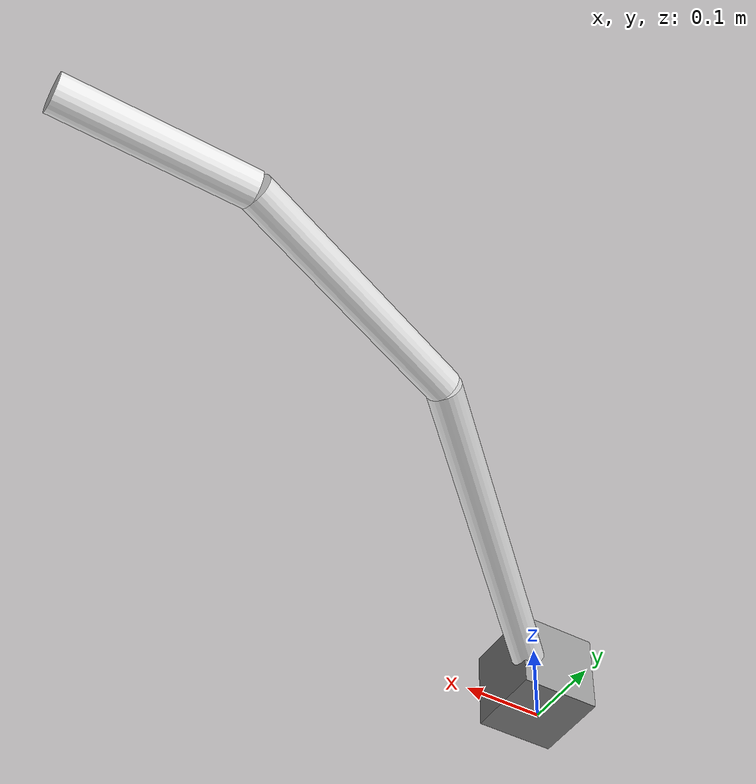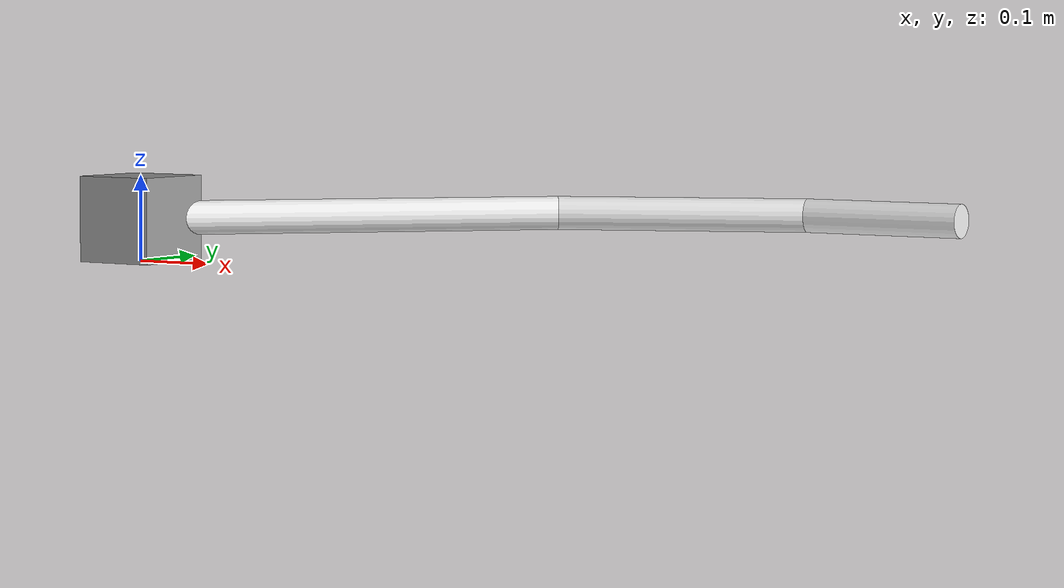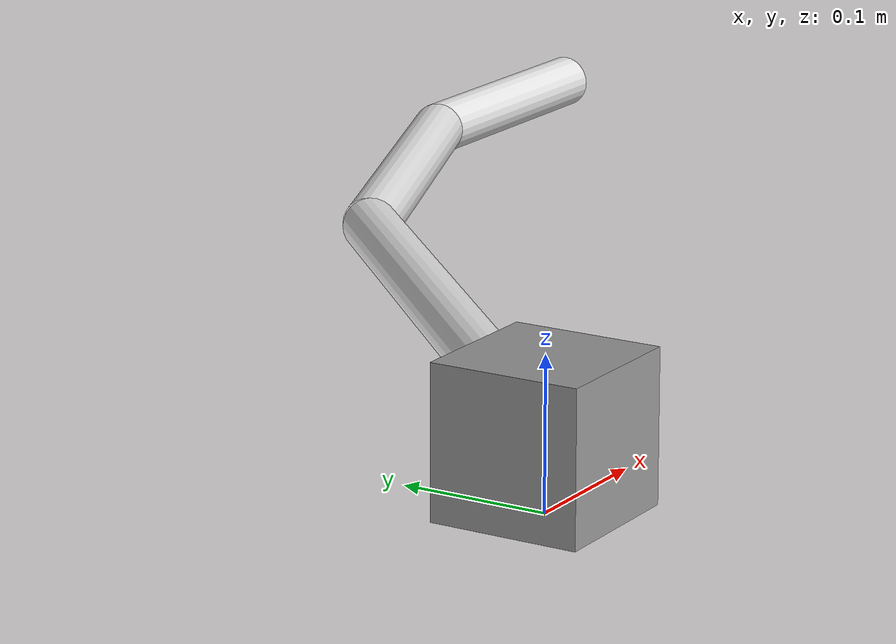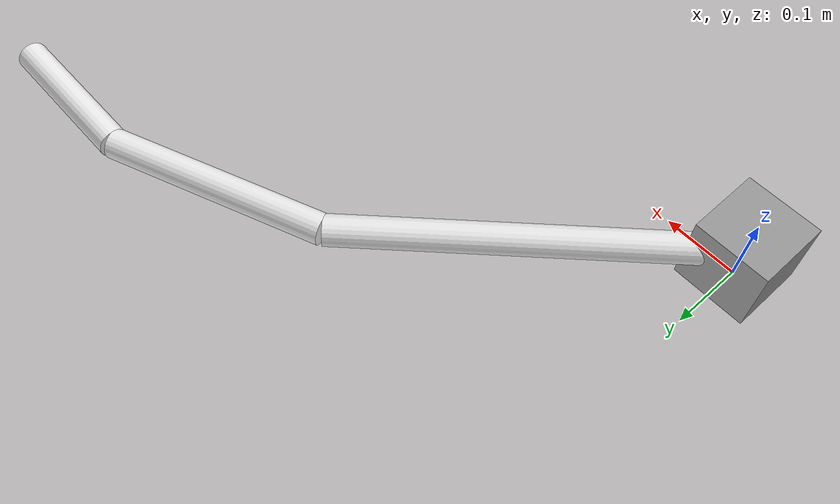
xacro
<?xml version='1.0' encoding='utf-8'?>
<robot xmlns:xacro="http://www.ros.org/wiki/xacro" name="3dof_planar">
  <xacro:include filename="$(find gbot_description)/urdf/3dof_planar.xacro" />
  <xacro:include filename="$(find gbot_description)/urdf/3dof_planar.gazebo.xacro" />
  <xacro:include filename="$(find gbot_description)/urdf/3dof_planar_vel.transmission.xacro" />

  <link name="world" />

  <xacro:three_dof_planar_arm connected_to="world"/>
  <xacro:three_dof_planar_gazebo/>
  <xacro:three_dof_planar_transmission/>

</robot>

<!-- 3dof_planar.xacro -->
<robot xmlns:xacro="http://www.ros.org/wiki/xacro" name="3dof_planar">
  <xacro:macro name="three_dof_planar_arm" params="arm_id:='three_dof_planar' connected_to:='' xyz:='0 0 0' rpy:='0 0 0'">
    <xacro:unless value="${not connected_to}">
      <joint name="${arm_id}_joint_${connected_to}" type="fixed">
        <parent link="${connected_to}"/>
        <child link="${arm_id}_link0"/>
        <origin rpy="${rpy}" xyz="${xyz}"/>
      </joint>
    </xacro:unless>

    <!-- for simulation -->
    <xacro:property name="joint_damping" value="0.0"/>
    <xacro:property name="link1_length" value="0.5"/>
    <xacro:property name="link2_length" value="0.3"/>
    <xacro:property name="link3_length" value="0.2"/>
    <!-- end for simulation -->

    <link name="${arm_id}_link0">
      <visual>
        <geometry>
	   <box size="0.1 0.1 0.1"/>
        </geometry>
        <origin rpy="0.0 0.0 0.0" xyz="0.0 0.0 0.05"/>
      </visual>
      <collision>
        <geometry>
	   <box size="0.1 0.1 0.1"/>
        </geometry>
        <origin rpy="0.0 0.0 0.0" xyz="0.0 0.0 0.05"/>
      </collision>

      <!-- for simulation -->
      <inertial>
        <origin xyz="0 0 0" rpy="0 0 0" />
        <mass value="5.0" />
        <inertia ixx="0.0" ixy="0.0" ixz="0.0" iyy="0.0" iyz="0.0" izz="0.0" />
      </inertial>
      <!-- end for simulation -->
    </link>

    <link name="${arm_id}_link1">
      <visual>
        <geometry>
		<cylinder length="${link1_length}" radius="0.02"/>
        </geometry>
	<origin rpy="0.0 ${pi/2} 0.0" xyz="${link1_length/2} 0.0 0.0"/>
      </visual>
      <collision>
        <geometry>
		<cylinder length="${link1_length}" radius="0.02"/>
        </geometry>
	<origin rpy="0.0 ${pi/2} 0.0" xyz="${link1_length/2} 0.0 0.0"/>
      </collision>

      <!-- for simulation -->
      <inertial>
        <origin xyz="${link1_length/2} 0.0 0.0" rpy="0 0 0" />
        <mass value="1.0" />
        <!--inertia izz="0.02" ixy="0.0" ixz="0.0" iyy="0.02" iyz="0.0" ixx="0.0002" /-->
        <inertia izz="0.0" ixy="0.0" ixz="0.0" iyy="0.0" iyz="0.0" ixx="0.0" />
      </inertial>
      <!-- end for simulation -->
    </link>

    <joint name="${arm_id}_joint1" type="revolute">
      <safety_controller k_position="100.0" k_velocity="40.0" soft_lower_limit="-1.9" soft_upper_limit="1.9"/>
      <origin rpy="0 0 ${pi/4}" xyz="0 0 0.05"/>
      <parent link="${arm_id}_link0"/>
      <child link="${arm_id}_link1"/>
      <axis xyz="0 0 1"/>
      <limit effort="15" lower="-2" upper="2" velocity="2.1750"/>
      <!-- for simulation -->
      <dynamics damping="${joint_damping}" friction="0.546"/>
      <!-- end for simulation -->
    </joint>

    <link name="${arm_id}_link2">
      <visual>
        <geometry>
		<cylinder length="${link2_length}" radius="0.02"/>
        </geometry>
	<origin rpy="0.0 ${pi/2} 0.0" xyz="${link2_length/2} 0.0 0.0"/>
      </visual>
      <collision>
        <geometry>
		<cylinder length="${link2_length}" radius="0.02"/>
        </geometry>
	<origin rpy="0.0 ${pi/2} 0.0" xyz="${link2_length/2} 0.0 0.0"/>
      </collision>

      <!-- for simulation -->
      <inertial>
        <origin xyz="${link2_length/2} 0.0 0.0" rpy="0 0 0" />
        <mass value="0.6" />
        <!--inertia izz="0.00456" ixy="0.0" ixz="0.0" iyy="0.00456" iyz="0.0" ixx="0.0001" /-->
        <inertia izz="0.0" ixy="0.0" ixz="0.0" iyy="0.0" iyz="0.0" ixx="0.0" />
      </inertial>
      <!-- end for simulation -->
    </link>

    <joint name="${arm_id}_joint2" type="revolute">
      <safety_controller k_position="100.0" k_velocity="40.0" soft_lower_limit="-1.9" soft_upper_limit="1.9"/>
      <origin rpy="0 0 ${-pi/8}" xyz="${link1_length} 0 0"/>
      <parent link="${arm_id}_link1"/>
      <child link="${arm_id}_link2"/>
      <axis xyz="0 0 1"/>
      <limit effort="15" lower="-2" upper="2" velocity="2.1750"/>
      <!-- for simulation -->
      <dynamics damping="${joint_damping}" friction="0.546"/>
      <!-- end for simulation -->
    </joint>

    <link name="${arm_id}_link3">
      <visual>
        <geometry>
		<cylinder length="${link3_length}" radius="0.02"/>
        </geometry>
	<origin rpy="0.0 ${pi/2} 0.0" xyz="${link3_length/2} 0.0 0.0"/>
      </visual>
      <collision>
        <geometry>
		<cylinder length="${link3_length}" radius="0.02"/>
        </geometry>
	<origin rpy="0.0 ${pi/2} 0.0" xyz="${link3_length/2} 0.0 0.0"/>
      </collision>

      <!-- for simulation -->
      <inertial>
        <origin xyz="${link3_length/2} 0.0 0.0" rpy="0 0 0" />
        <mass value="0.3" />
        <!--inertia izz="0.00103" ixy="0.0" ixz="0.0" iyy="0.00103" iyz="0.0" ixx="0.00006" /-->
        <inertia izz="0.0" ixy="0.0" ixz="0.0" iyy="0.0" iyz="0.0" ixx="0.0" />
      </inertial>
      <!-- end for simulation -->
    </link>

    <joint name="${arm_id}_joint3" type="revolute">
      <safety_controller k_position="100.0" k_velocity="40.0" soft_lower_limit="-1.9" soft_upper_limit="1.9"/>
      <origin rpy="0 0 ${-pi/8}" xyz="${link2_length} 0 0"/>
      <parent link="${arm_id}_link2"/>
      <child link="${arm_id}_link3"/>
      <axis xyz="0 0 1"/>
      <limit effort="15" lower="-2" upper="2" velocity="2.1750"/>
      <!-- for simulation -->
      <dynamics damping="${joint_damping}" friction="0.546"/>
      <!-- end for simulation -->
    </joint>

    <link name="${arm_id}_eef">
      <!-- for simulation -->
      <inertial>
        <origin xyz="0 0 0" rpy="0 0 0" />
        <mass value="0.0" />
        <inertia ixx="0.0" ixy="0.0" ixz="0.0" iyy="0.0" iyz="0.0" izz="0.0" />
      </inertial>
      <!-- end for simulation -->
    </link>
    <joint name="${arm_id}_eef_fixed" type="fixed">
	    <origin rpy="0 0 0" xyz="${link3_length} 0 0"/>
      <parent link="${arm_id}_link3"/>
      <child link="${arm_id}_eef"/>
      <axis xyz="0 0 0"/>
    </joint>

  </xacro:macro>
</robot>
